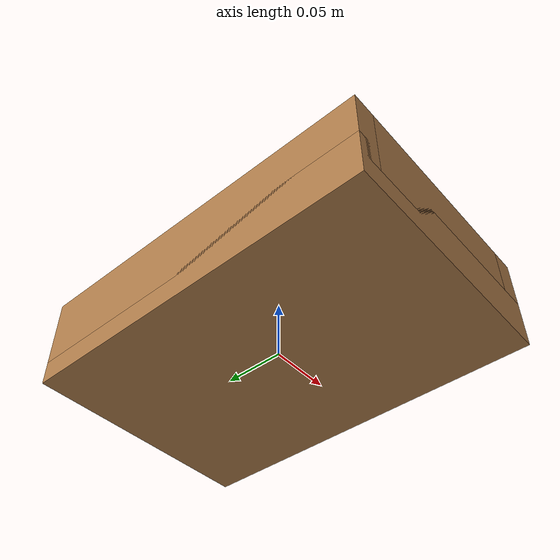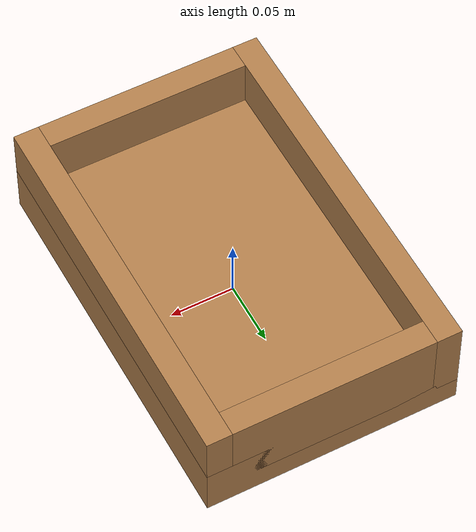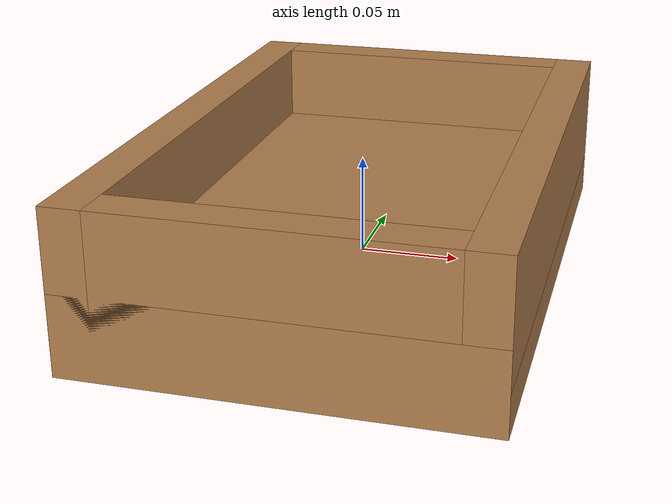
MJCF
<?xml version="1.0" encoding="utf-8"?>
<!-- from https://github.com/vikashplus/mj_envs/tree/master/mj_envs/hand_manipulation_suite/assets -->
<!-- Information about door can be found in this paper: https://arxiv.org/pdf/1709.10087.pdf -->

<mujoco model="utensil_case">
  <asset>
    <texture file="../textures/light-wood.png" type="cube" name="light-wood" />
    <material name="MatLightWood" texture="light-wood" texrepeat="3 3" specular="0.4" shininess="0.1" />
  </asset>
  <worldbody>
    <body>
      <body name="object">
        <inertial pos="0 0 0" mass="1.47392" diaginertia="0.472637 0.580381 0.109316"/>
        <site name="origin" pos="0 0 0" rgba="0 0 0 0" size="0.005"/>

        <body name="body">
          <geom pos="0 0.0 0.01" size="0.1 0.15 0.02" type="box" friction="1 1 1" group="0" material="MatLightWood"/>

          <geom pos="0  0.14 0.04" size="0.08 0.01 0.03" type="box" friction="1 1 1" group="0" material="MatLightWood"/>
          <geom pos="0 -0.14 0.04" size="0.08 0.01 0.03" type="box" friction="1 1 1" group="0" material="MatLightWood"/>
          <geom pos=" 0.09 0 0.04" size="0.01 0.15 0.03" type="box" friction="1 1 1" group="0" material="MatLightWood"/>
          <geom pos="-0.09 0 0.04" size="0.01 0.15 0.03" type="box" friction="1 1 1" group="0" material="MatLightWood"/>
        </body>

      </body>
      <site name="bottom_site" pos="0 0 -0.0207" rgba="0 0 0 0" size="0.005"/>
      <site name="top_site" pos="0 0 0.007" rgba="0 0 0 0" size="0.005"/>
      <site name="horizontal_radius_site" pos="0 0 0" rgba="0 0 0 0" size="0.003"/>
    </body>

  </worldbody>
</mujoco>
